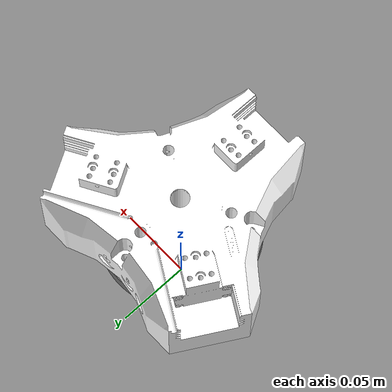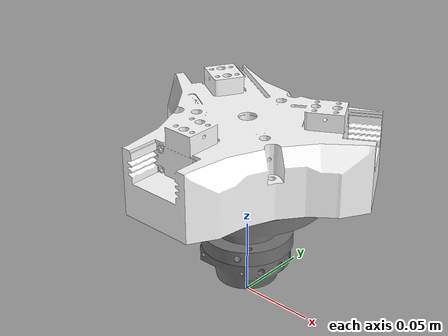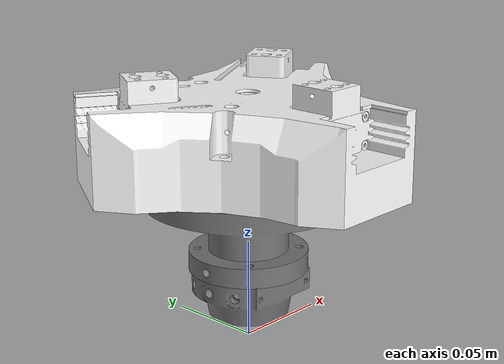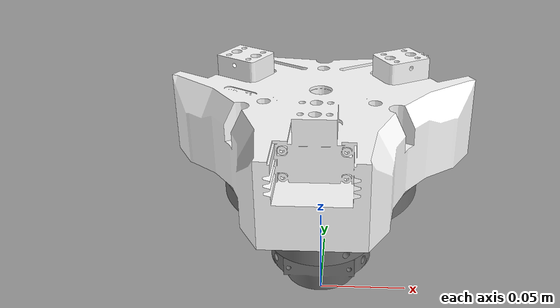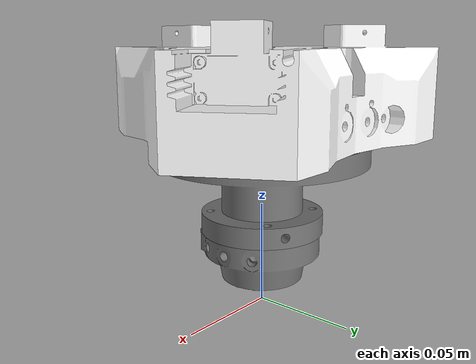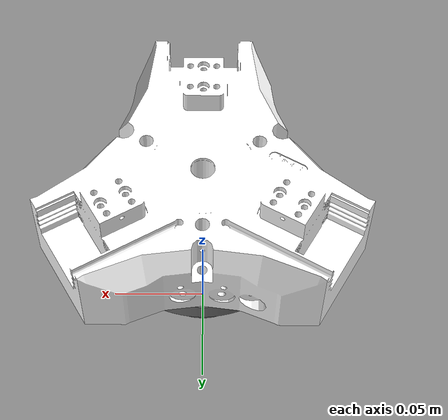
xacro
<?xml version='1.0'?>
<robot xmlns:xacro="http://www.ros.org/wiki/xacro" name="schunk_pzh20_gripper">
    <material name="white">
        <color rgba="1 1 1 1"/>
    </material>

    <xacro:arg name="schunk_gripper_id" default="schunk_pzh20"/>
    <xacro:arg name="schunk_adapter_id" default="schunk_pzh20_adapter"/>
    <xacro:arg name="schunk_tc_id" default="schunk_pzh20_tc"/>

    <link name="$(arg schunk_tc_id)_base">
    </link>

    <joint name="toolchanger_joint" type="fixed">
        <parent link="$(arg schunk_tc_id)_base"/>
        <child link="$(arg schunk_tc_id)"/>
        <origin rpy="1.57 0 3.14" xyz="0 0 0.037"/>
    </joint>

    <joint name="$griper_joint_adapter" type="fixed">
        <parent link="$(arg schunk_tc_id)"/>
        <child link="$(arg schunk_adapter_id)"/>
        <origin rpy="-1.57 0 0" xyz="0 0.045 0"/>
    </joint>

    <joint name="$griper_joint" type="fixed">
        <parent link="$(arg schunk_adapter_id)"/>
        <child link="$(arg schunk_gripper_id)"/>
        <origin rpy="1.57 0 0" xyz="0 0 0"/>
    </joint>

    <material name="darkgray">
    <color rgba="0.45 0.45 0.45 1"/>
    </material>

    <link name="$(arg schunk_tc_id)">
        <visual>
            <origin rpy="0 0 0" xyz=" 0 0 0 "/>
            <geometry>
                <mesh filename="package://reconcycle_description/meshes/tc_tool_side.obj" scale ="0.001 0.001 0.001"/>
	</geometry>
            <material name="darkgray"/>
        </visual>
        <collision>
            <origin rpy="0 0 0" xyz="0.0 0.0 0"/>
            <geometry>
                <mesh filename="package://reconcycle_description/meshes/tc_tool_side.obj" scale ="0.001 0.001 0.001"/>
            </geometry>
        </collision>
        <inertial>
            <origin xyz="0 0 0" rpy="0 0 0"/>
            <mass value="3"/>
            <inertia ixx="3.0" ixy="0.0" ixz="0.0" iyy="3.0" iyz="0.0" izz="3.0"/>
        </inertial>
    </link>

    <link name="$(arg schunk_adapter_id)">
        <visual>
            <origin rpy="0 0 0" xyz=" 0 0 0 "/>
            <geometry>
                <mesh filename="package://reconcycle_description/meshes/grippers/schunk_to_tc_adapter.stl" scale="0.001 0.001 0.001"/>
            </geometry>
            <material name="darkgray"/>
        </visual>
        <collision>
            <origin rpy="0 0 0" xyz="0.0 0.0 0"/>
            <geometry>
                <mesh filename="package://reconcycle_description/meshes/grippers/schunk_to_tc_adapter.stl" scale ="0.001 0.001 0.001"/>
            </geometry>
        </collision>
        <inertial>
            <origin xyz="0 0 0" rpy="0 0 0"/>
            <mass value="3"/>
            <inertia ixx="3.0" ixy="0.0" ixz="0.0" iyy="3.0" iyz="0.0" izz="3.0"/>
        </inertial>
    </link>

    <link name="$(arg schunk_gripper_id)">
        <visual>
            <origin rpy="0 0 0" xyz=" 0 0 0 "/>
            <geometry>
                <mesh filename="package://reconcycle_description/meshes/grippers/schunk_pzh20.stl" scale="0.001 0.001 0.001"/>
            </geometry>
            <material name="white"/>
        </visual>
        <collision>
            <origin rpy="0 0 0" xyz="0.0 0.0 0"/>
            <geometry>
                <mesh filename="package://reconcycle_description/meshes/grippers/schunk_pzh20.stl" scale ="0.001 0.001 0.001"/>
            </geometry>
        </collision>
        <inertial>
            <origin xyz="0 0 0" rpy="0 0 0"/>
            <mass value="3"/>
            <inertia ixx="3.0" ixy="0.0" ixz="0.0" iyy="3.0" iyz="0.0" izz="3.0"/>
        </inertial>
    </link>
    <xacro:include filename="$(find reconcycle_description)/urdf/reconcycle_defaults.xacro"/>
</robot>
